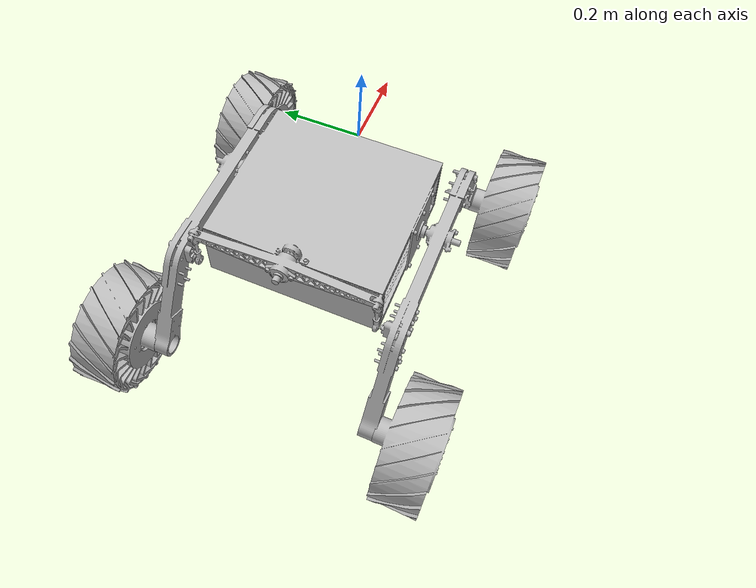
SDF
<?xml version="1.0" ?>
<sdf version="1.8">
    <!--Cengaver Body Model-->
    <!--Weight Properties are inaccurate!-->
    <model name='cengaver_body' canonical_link='body'>

        <!-- LINKS -->

        <link name='body'>
            <pose relative_to='__model__'>0 0 0 0 0 0</pose>
            <inertial>
                <mass>1.14395</mass>
                <inertia>
                <ixx>0.095329</ixx>
                <ixy>0</ixy>
                <ixz>0</ixz>
                <iyy>0.381317</iyy>
                <iyz>0</iyz>
                <izz>0.476646</izz>
                </inertia>
            </inertial>
            <visual name='visual'>
                <geometry>
                <mesh>

                    <uri>models/blender-body/Body.obj</uri>
                    <scale>1 1 1</scale>

                </mesh>
                </geometry>
            </visual>

            <collision name='collision'>
                <pose>-0.2 0 -0.0815 0 0 0</pose>
                <geometry>
                    <box>
                        <size>0.4 0.440 0.163</size>
                    </box>
                </geometry>
            </collision>
        </link>

        <link name='RL'>
            <pose relative_to='body'>-0.150 -0.243 -0.083 0 0 0</pose>
            <inertial>
                <mass>1.14395</mass>
                <inertia>
                <ixx>0.095329</ixx>
                <ixy>0</ixy>
                <ixz>0</ixz>
                <iyy>0.381317</iyy>
                <iyz>0</iyz>
                <izz>0.476646</izz>
                </inertia>
            </inertial>
            <visual name='visual'>
                <geometry>
                <mesh>

                    <uri>models/blender-body/RL.obj</uri>
                    <scale>1 1 1</scale>

                </mesh>
                </geometry>
            </visual>

            <collision name='A1'>
                <pose>-0.05192 -0.0325 0 0 0 0</pose>
                <geometry>
                    <box>
                        <size>0.487 0.04 0.057</size>
                    </box>
                </geometry>
            </collision>

            <collision name='A2'>
                <pose>-0.36683 -0.0325 -0.1244 0 2.094 0</pose>
                <geometry>
                    <box>
                        <size>0.288 0.04 0.057</size>
                    </box>
                </geometry>
            </collision>

            <collision name='A3'>
                <pose>0.264 -0.0325 -0.12615 0 -2.094 0</pose>
                <geometry>
                    <box>
                        <size>0.288 0.04 0.057</size>
                    </box>
                </geometry>
            </collision>
        </link>

        <link name='LL'>
            <pose relative_to='body'>-0.15 0.243 -0.083 0 0 0</pose>
            <inertial>
                <mass>1.14395</mass>
                <inertia>
                <ixx>0.095329</ixx>
                <ixy>0</ixy>
                <ixz>0</ixz>
                <iyy>0.381317</iyy>
                <iyz>0</iyz>
                <izz>0.476646</izz>
                </inertia>
            </inertial>
            <visual name='visual'>
                <geometry>
                <mesh>

                    <uri>models/blender-body/LL.obj</uri>
                    <scale>1 1 1</scale>

                </mesh>
                </geometry>
            </visual>

            <collision name='A1'>
                <pose>-0.05192 0.0325 0 0 0 0</pose>
                <geometry>
                    <box>
                        <size>0.487 0.04 0.057</size>
                    </box>
                </geometry>
            </collision>

            <collision name='A2'>
                <pose>-0.36683 0.0325 -0.1244 0 2.094 0</pose>
                <geometry>
                    <box>
                        <size>0.288 0.04 0.057</size>
                    </box>
                </geometry>
            </collision>

            <collision name='A3'>
                <pose>0.264 0.0325 -0.12615 0 -2.094 0</pose>
                <geometry>
                    <box>
                        <size>0.288 0.04 0.057</size>
                    </box>
                </geometry>
            </collision>
        </link>

        <link name='wheel-fr'>
            <pose relative_to='RL'>0.32094 -0.0485 -0.22452 0 0 0</pose>
            <inertial>
                <mass>1.14395</mass>
                <inertia>
                <ixx>0.095329</ixx>
                <ixy>0</ixy>
                <ixz>0</ixz>
                <iyy>0.381317</iyy>
                <iyz>0</iyz>
                <izz>0.476646</izz>
                </inertia>
            </inertial>
            <visual name='visual'>
                <geometry>
                <mesh>

                    <uri>models/blender-body/Wheel-R.obj</uri>
                    <scale>1 1 1</scale>

                </mesh>
                </geometry>
            </visual>

            <collision name="Middle">
            <pose>0 -0.098 0 1.5707 0 0</pose>
            <geometry>
                <cylinder>
                <radius>0.16</radius>
                <length>0.12</length>
                </cylinder>
            </geometry>
            </collision>

            <collision name="Outer">
            <pose>0 -0.1605 0 1.5707 0 0</pose>
            <geometry>
                <cylinder>
                <radius>0.09</radius>
                <length>0.005</length>
                </cylinder>
            </geometry>
            </collision>

            <collision name="Inner">
            <pose>0 -0.0165 0 1.5707 0 0</pose>
            <geometry>
                <cylinder>
                <radius>0.0325</radius>
                <length>0.033</length>
                </cylinder>
            </geometry>
            </collision>
        </link>

        <link name='wheel-br'>
            <pose relative_to='RL'>-0.42266 -0.0485 -0.22135 0 0 0</pose>
            <inertial>
                <mass>1.14395</mass>
                <inertia>
                <ixx>0.095329</ixx>
                <ixy>0</ixy>
                <ixz>0</ixz>
                <iyy>0.381317</iyy>
                <iyz>0</iyz>
                <izz>0.476646</izz>
                </inertia>
            </inertial>
            <visual name='visual'>
                <geometry>
                <mesh>

                    <uri>models/blender-body/Wheel-R.obj</uri>
                    <scale>1 1 1</scale>

                </mesh>
                </geometry>
            </visual>

            <collision name="Middle">
            <pose>0 -0.098 0 1.5707 0 0</pose>
            <geometry>
                <cylinder>
                <radius>0.16</radius>
                <length>0.12</length>
                </cylinder>
            </geometry>
            </collision>

            <collision name="Outer">
            <pose>0 -0.1605 0 1.5707 0 0</pose>
            <geometry>
                <cylinder>
                <radius>0.09</radius>
                <length>0.005</length>
                </cylinder>
            </geometry>
            </collision>

            <collision name="Inner">
            <pose>0 -0.0165 0 1.5707 0 0</pose>
            <geometry>
                <cylinder>
                <radius>0.0325</radius>
                <length>0.033</length>
                </cylinder>
            </geometry>
            </collision>
        </link>

        <link name='wheel-fl'>
            <pose relative_to='LL'>0.32094 0.0485 -0.22452 0 0 0</pose>
            <inertial>
                <mass>1.14395</mass>
                <inertia>
                <ixx>0.095329</ixx>
                <ixy>0</ixy>
                <ixz>0</ixz>
                <iyy>0.381317</iyy>
                <iyz>0</iyz>
                <izz>0.476646</izz>
                </inertia>
            </inertial>
            <visual name='visual'>
                <geometry>
                <mesh>

                    <uri>models/blender-body/Wheel-L.obj</uri>
                    <scale>1 1 1</scale>

                </mesh>
                </geometry>
            </visual>

            <collision name="Middle">
            <pose>0 0.098 0 1.5707 0 0</pose>
            <geometry>
                <cylinder>
                <radius>0.16</radius>
                <length>0.12</length>
                </cylinder>
            </geometry>
            </collision>

            <collision name="Outer">
            <pose>0 0.1605 0 1.5707 0 0</pose>
            <geometry>
                <cylinder>
                <radius>0.09</radius>
                <length>0.005</length>
                </cylinder>
            </geometry>
            </collision>

            <collision name="Inner">
            <pose>0 0.0165 0 1.5707 0 0</pose>
            <geometry>
                <cylinder>
                <radius>0.0325</radius>
                <length>0.033</length>
                </cylinder>
            </geometry>
            </collision>
        </link>

        <link name='wheel-bl'>
            <pose relative_to='LL'>-0.42266 0.0485 -0.22135 0 0 0</pose>
            <inertial>
                <mass>1.14395</mass>
                <inertia>
                <ixx>0.095329</ixx>
                <ixy>0</ixy>
                <ixz>0</ixz>
                <iyy>0.381317</iyy>
                <iyz>0</iyz>
                <izz>0.476646</izz>
                </inertia>
            </inertial>
            <visual name='visual'>
                <geometry>
                <mesh>

                    <uri>models/blender-body/Wheel-L.obj</uri>
                    <scale>1 1 1</scale>

                </mesh>
                </geometry>
            </visual>

            <collision name="Middle">
            <pose>0 0.098 0 1.5707 0 0</pose>
            <geometry>
                <cylinder>
                <radius>0.16</radius>
                <length>0.12</length>
                </cylinder>
            </geometry>
            </collision>

            <collision name="Outer">
            <pose>0 0.1605 0 1.5707 0 0</pose>
            <geometry>
                <cylinder>
                <radius>0.09</radius>
                <length>0.005</length>
                </cylinder>
            </geometry>
            </collision>

            <collision name="Inner">
            <pose>0 0.0165 0 1.5707 0 0</pose>
            <geometry>
                <cylinder>
                <radius>0.0325</radius>
                <length>0.033</length>
                </cylinder>
            </geometry>
            </collision>
        </link>

        <link name='rocker'>
            <pose relative_to='body'>-0.405 0 0.019 0 0 0</pose>
            <inertial>
                <mass>1.14395</mass>
                <inertia>
                <ixx>0.095329</ixx>
                <ixy>0</ixy>
                <ixz>0</ixz>
                <iyy>0.381317</iyy>
                <iyz>0</iyz>
                <izz>0.476646</izz>
                </inertia>
            </inertial>
            <visual name='visual'>
                <geometry>
                <mesh>

                    <uri>models/blender-body/Rocker.obj</uri>
                    <scale>1 1 1</scale>

                </mesh>
                </geometry>
            </visual>

            <collision name='collision'>
                <pose>-0.2 0 -0.0815 0 0 0</pose>
                <geometry>
                    <box>
                        <size>0.4 0.440 0.163</size>
                    </box>
                </geometry>
            </collision>
        </link>

        <!-- JOINTS -->

        <joint name="body_RL" type="revolute">
            <parent>body</parent>
            <child>RL</child>

            <pose>0 0 0 0 0 0</pose>
            <axis>
                <xyz>0 1 0</xyz>
            </axis>
        </joint>

        <joint name="body_LL" type="revolute">
            <parent>body</parent>
            <child>LL</child>

            <pose>0 0 0 0 0 0</pose>
            <axis>
                <xyz>0 1 0</xyz>
            </axis>
        </joint>

        <joint name="body_rocker" type="revolute">
            <parent>body</parent>
            <child>rocker</child>

            <pose>0 0 0 0 0 0</pose>
            <axis>
                <xyz>1 0 0</xyz>
            </axis>
        </joint>

        <joint name="RL_fr" type="revolute">
            <parent>RL</parent>
            <child>wheel-fr</child>

            <pose>0 0 0 0 0 0</pose>
            <axis>
                <xyz>0 1 0</xyz>
            </axis>
        </joint>

        <joint name="RL_br" type="revolute">
            <parent>RL</parent>
            <child>wheel-br</child>

            <pose>0 0 0 0 0 0</pose>
            <axis>
                <xyz>0 1 0</xyz>
            </axis>
        </joint>

        <joint name="LL_fl" type="revolute">
            <parent>LL</parent>
            <child>wheel-fl</child>

            <pose>0 0 0 0 0 0</pose>
            <axis>
                <xyz>0 1 0</xyz>
            </axis>
        </joint>

        <joint name="LL_bl" type="revolute">
            <parent>LL</parent>
            <child>wheel-bl</child>

            <pose>0 0 0 0 0 0</pose>
            <axis>
                <xyz>0 1 0</xyz>
            </axis>
        </joint>

        <!--JOINT CONTROLLERS-->
        <!--Remember to replace values according to true robot-->
        <plugin filename="ignition-gazebo-joint-controller-system"
            name="ignition::gazebo::systems::JointController">
            <joint_name>RL_fr</joint_name>
            <p_gain>20.0</p_gain>     <!-- N·m per rad (approx) -->
            <d_gain>2.0</d_gain>      <!-- N·m·s per rad -->
            <i_gain>0.1</i_gain>      <!-- small integrator -->
            <i_min>-1.0</i_min>       <!-- clamp integral contribution (N·m) -->
            <i_max>1.0</i_max>
            <cmd_min>-1</cmd_min>
            <cmd_max>1</cmd_max>
        </plugin>
        <plugin filename="ignition-gazebo-joint-controller-system"
            name="ignition::gazebo::systems::JointController">
            <joint_name>RL_br</joint_name>
            <p_gain>20.0</p_gain>
            <d_gain>2.0</d_gain>
            <i_gain>0.1</i_gain>
            <i_min>-1.0</i_min>
            <i_max>1.0</i_max>
            <cmd_min>-1</cmd_min>
            <cmd_max>1</cmd_max>
        </plugin>
        <plugin filename="ignition-gazebo-joint-controller-system"
            name="ignition::gazebo::systems::JointController">
            <joint_name>LL_fl</joint_name>
            <p_gain>20.0</p_gain>
            <d_gain>2.0</d_gain>
            <i_gain>0.1</i_gain>
            <i_min>-1.0</i_min>
            <i_max>1.0</i_max>
            <cmd_min>-1</cmd_min>
            <cmd_max>1</cmd_max>
            </plugin>
        <plugin filename="ignition-gazebo-joint-controller-system"
            name="ignition::gazebo::systems::JointController">
            <joint_name>LL_bl</joint_name>
            <p_gain>20.0</p_gain>
            <d_gain>2.0</d_gain>
            <i_gain>0.1</i_gain>
            <i_min>-1.0</i_min>
            <i_max>1.0</i_max>
            <cmd_min>-1</cmd_min>
            <cmd_max>1</cmd_max>
        </plugin>

        <!-- The three below plugins keep the relation between rocker(differential) and legs intact (solution to parallel mechanism)-->

        <plugin filename="ignition-gazebo-joint-controller-system"
            name="ignition::gazebo::systems::JointController">
            <joint_name>body_LL</joint_name>
            <p_gain>20.0</p_gain>     <!-- N·m per rad (approx) -->
            <d_gain>2.0</d_gain>      <!-- N·m·s per rad -->
            <i_gain>0.1</i_gain>      <!-- small integrator -->
            <i_min>-1.0</i_min>       <!-- clamp integral contribution (N·m) -->
            <i_max>1.0</i_max>
            <cmd_min>-1</cmd_min>
            <cmd_max>1</cmd_max>
        </plugin>

        <plugin filename="ignition-gazebo-joint-controller-system"
            name="ignition::gazebo::systems::JointController">
            <joint_name>body_RL</joint_name>
            <p_gain>20.0</p_gain>     <!-- N·m per rad (approx) -->
            <d_gain>2.0</d_gain>      <!-- N·m·s per rad -->
            <i_gain>0.1</i_gain>      <!-- small integrator -->
            <i_min>-1.0</i_min>       <!-- clamp integral contribution (N·m) -->
            <i_max>1.0</i_max>
            <cmd_min>-1</cmd_min>
            <cmd_max>1</cmd_max>
        </plugin>

      <plugin
          filename="libbody_plugin.so"
          name="BodyPlugin">
      </plugin>
    </model>
</sdf>
